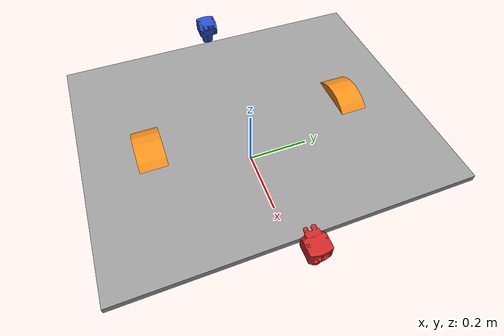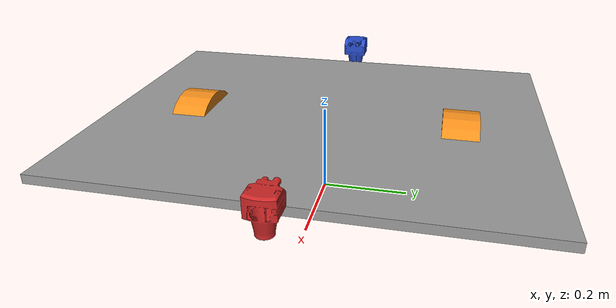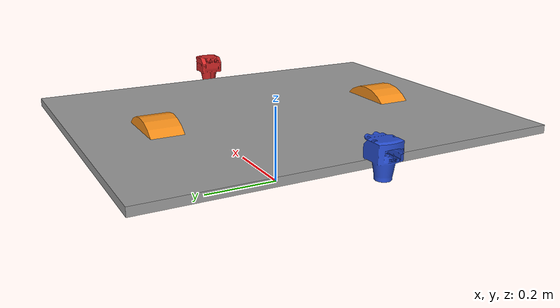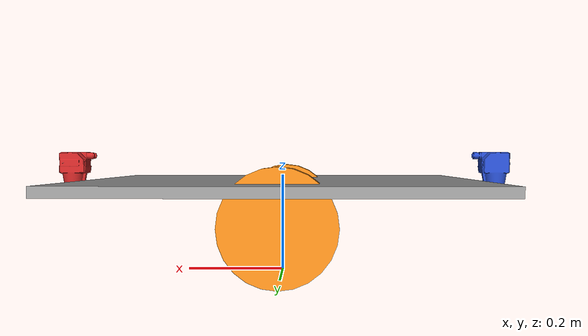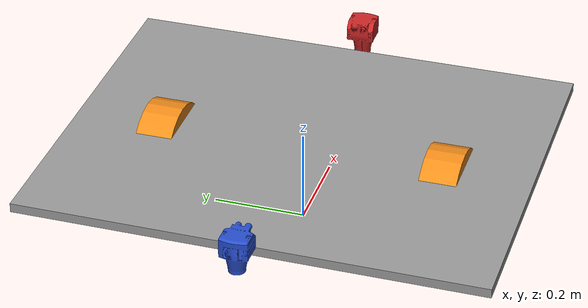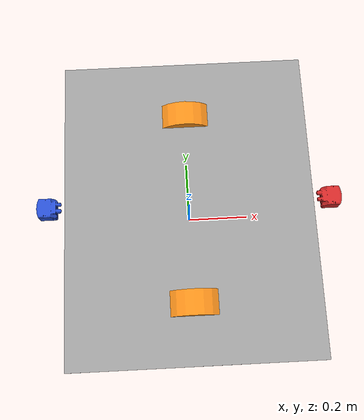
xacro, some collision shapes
<?xml version="1.0" ?>
<robot name="tway" xmlns:xacro="http://ros.org/wiki/xacro">
<!-- This included file for COLOR define-->
  <xacro:include filename="$(find tway_description)/urdf/common_properties.xacro"/>

<!--This is for: Constant declare -->
  <xacro:property name="r200_cam_rgb_px" value="0.005"/>
  <xacro:property name="r200_cam_rgb_py" value="0.018"/>
  <xacro:property name="r200_cam_rgb_pz" value="0.013"/>
  <xacro:property name="r200_cam_depth_offset" value="0.01"/>

	<xacro:property name="length_wheel" value="0.05" />
	<xacro:property name="radius_wheel" value="0.05" />
	<xacro:macro name="default_inertial" params="mass">
		<inertial>
			<mass value="${mass}" />
			<inertia ixx="1.0" ixy="0.0" ixz="0.0"
					 iyy="1.0" iyz="0.0"
					 izz="1.0" />
		</inertial>
	</xacro:macro>

<!--First, we have to Describe Tway Base (body) and its foot print -->

  <link name="base_footprint"/>
  <joint name="base_joint" type="fixed">
    <parent link="base_footprint"/>
    <child link="base_link" />
    <origin xyz="0 0 0.0" rpy="0 0 0"/>
  </joint>

  <link name="base_link">
    <visual>
      <origin xyz="-0.52 0.82 -0.23" rpy="1.57 0 0"/>
      <geometry>
        <mesh filename="package://tway_description/meshes/bases/tway_base.stl" scale="0.001 0.001 0.001"/>
      </geometry>
      <material name="grey"/>
    </visual>

    <collision>
      <origin xyz="0 0.0 0.18" rpy="0 0 0"/>
      <geometry>
        <box size="0.8 1.0 0.02"/>
      </geometry>
    </collision>

    <inertial>
      <origin xyz="0 0 0" rpy="0 0 0"/>
      <mass value="1.3729096e+00"/>
      <inertia ixx="8.7002718e-03" ixy="-4.7576583e-05" ixz="1.1160499e-04"
               iyy="8.6195418e-03" iyz="-3.5422299e-06"
               izz="1.4612727e-02" />
    </inertial>
  </link>

<!--Second, We describe Left and Right Wheel  -->

  <joint name="wheel_left_joint" type="continuous">
    <parent link="base_link"/>
    <child link="wheel_left_link"/>
    <origin xyz="0.0 -0.31 0.11" rpy="1.57 0 0"/>
    <axis xyz="0 0 1"/>
  </joint>

  <link name="wheel_left_link">
    <visual>
      <origin xyz="0 0 0" rpy="0 0 0"/>
      <geometry>
        <cylinder length="0.08" radius="0.11"/>
      </geometry>
      <material name="orange"/>
    </visual>

    <collision>
      <origin xyz="0 0.001 0" rpy="0 0 0"/>
      <geometry>
        <cylinder length="0.018" radius="0.033"/>
      </geometry>
    </collision>

    <inertial>
      <origin xyz="0 0 0" />
      <mass value="2.8498940e-02" />
      <inertia ixx="1.1175580e-05" ixy="-4.2369783e-11" ixz="-5.9381719e-09"
               iyy="1.1192413e-05" iyz="-1.4400107e-11"
               izz="2.0712558e-05" />
      </inertial>
  </link>

  <joint name="wheel_right_joint" type="continuous">
    <parent link="base_link"/>
    <child link="wheel_right_link"/>
    <origin xyz="0.0 0.31 0.11" rpy="1.57 0 0"/>
    <axis xyz="0 0 1"/>
  </joint>

  <link name="wheel_right_link">
    <visual>
      <origin xyz="0 0 0" rpy="0 0 0"/>
      <geometry>
        <cylinder length="0.08" radius="0.11"/>
      </geometry>
      <material name="orange"/>
    </visual>

    <collision>
      <origin xyz="0 0.001 0" rpy="0 0 0"/>
      <geometry>
        <cylinder length="0.018" radius="0.033"/>
      </geometry>
    </collision>

    <inertial>
      <origin xyz="0 0 0" />
      <mass value="2.8498940e-02" />
      <inertia ixx="1.1175580e-05" ixy="-4.2369783e-11" ixz="-5.9381719e-09"
               iyy="1.1192413e-05" iyz="-1.4400107e-11"
               izz="2.0712558e-05" />
      </inertial>
  </link>

  <joint name="imu_joint" type="fixed">
    <parent link="base_link"/>
    <child link="imu_link"/>
    <origin xyz="0.0 0 0.068" rpy="0 0 0"/>
  </joint>

  <link name="imu_link"/>

  <joint name="scan_joint" type="fixed">
    <parent link="base_link"/>
    <child link="base_scan"/>
    <origin xyz="0.4 -0.035 0.250" rpy="0 0 0"/>
  </joint>

  <link name="base_scan">
    <visual>
      <origin xyz="0 0 0" rpy="-1.57 0 0"/>
      <geometry>
        <mesh filename="package://tway_description/meshes/sensors/sick551.stl" scale="0.001 0.001 0.001"/>
      </geometry>
      <material name="red"/>
    </visual>

    <collision>
      <origin xyz="0 0 0" rpy="0 0 0"/>
      <geometry>
        <cylinder length="0.0315" radius="0.055"/>
      </geometry>
    </collision>

    <inertial>
      <mass value="0.114" />
      <origin xyz="0 0 0" />
      <inertia ixx="0.001" ixy="0.0" ixz="0.0"
               iyy="0.001" iyz="0.0"
               izz="0.001" />
    </inertial>
  </link>

  <joint name="scan_joint_back" type="fixed">
    <parent link="base_link"/>
    <child link="base_scan_back"/>
    <origin xyz="-0.4 0.03 0.25" rpy="0 0 0"/>
  </joint>

  <link name="base_scan_back">
    <visual>
      <origin xyz="0 0.0 0.0" rpy="-1.57 0 3.14"/>
      <geometry>
        <mesh filename="package://tway_description/meshes/sensors/sick551.stl" scale="0.001 0.001 0.001"/>
      </geometry>
      <material name="blue"/>
    </visual>

    <collision>
      <origin xyz="0 0 0" rpy="0 0 0"/>
      <geometry>
        <cylinder length="0.0315" radius="0.055"/>
      </geometry>
    </collision>

    <inertial>
      <mass value="0.114" />
      <origin xyz="0 0 0" />
      <inertia ixx="0.001" ixy="0.0" ixz="0.0"
               iyy="0.001" iyz="0.0"
               izz="0.001" />
    </inertial>
  </link>

</robot>
